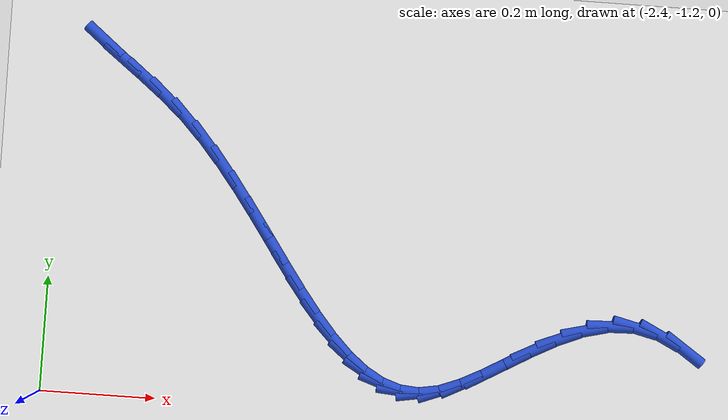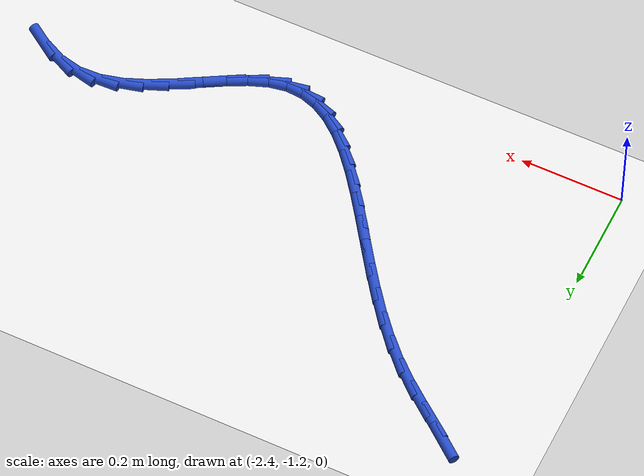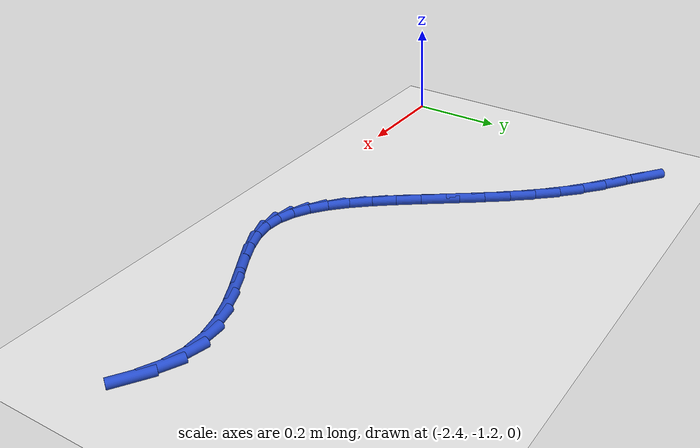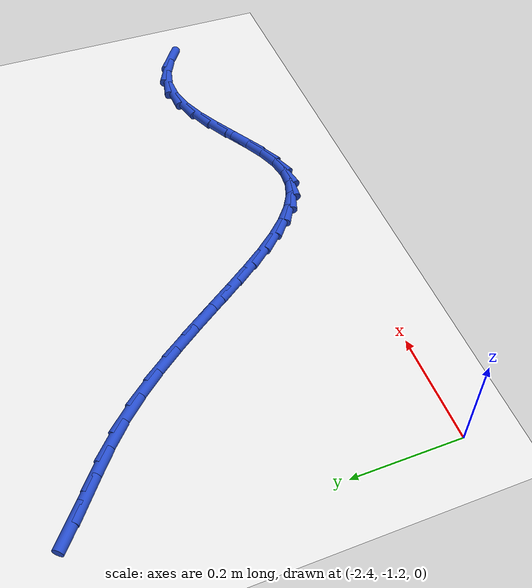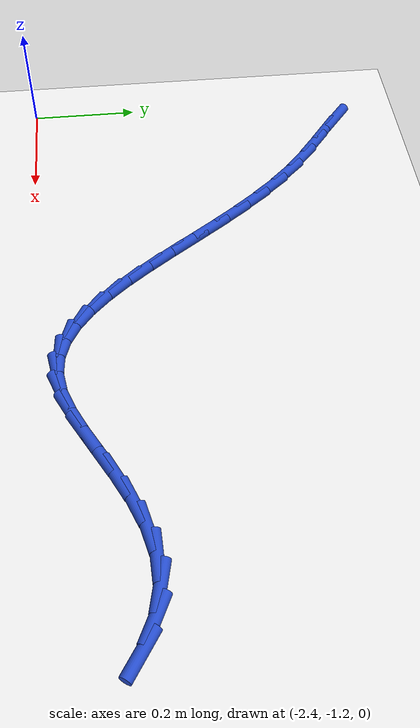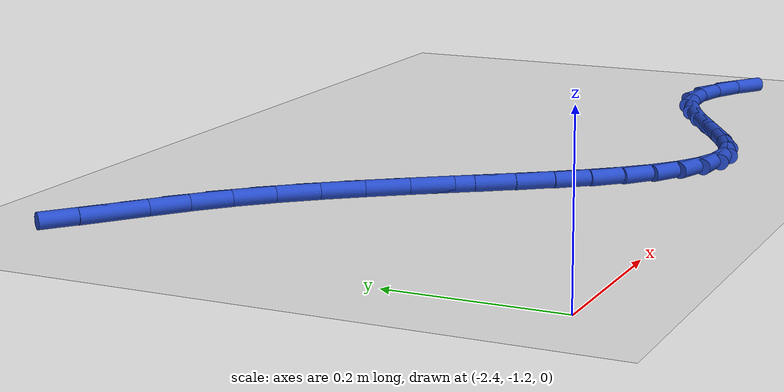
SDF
<sdf version="1.6">
 <world name="default">
  <model name="ground_plane">
   <static>1</static>
   <link name="link">
    <collision name="collision">
     <geometry><plane><normal>0 0 1</normal><size>100 100</size></plane></geometry>
     <surface><friction><ode><mu>100</mu><mu2>50</mu2></ode></friction></surface>
    </collision>
    <visual name="visual">
     <cast_shadows>0</cast_shadows>
     <geometry><plane><normal>0 0 1</normal><size>100 100</size></plane></geometry>
     <material>
      <script><uri>file://media/materials/scripts/gazebo.material</uri><name>Gazebo/WhiteGlow</name></script>
     </material>
    </visual>
   </link>
  </model>
  <model name="line">
   <link name="link_106">
    <pose>-2.328733847544443 -0.5861685321265618 0.01 0 1.57 -0.6800218580634966</pose>
    <collision name="collision">
     <geometry><cylinder><radius>0.01</radius><length>0.08</length></cylinder></geometry>
    </collision>
    <visual name="visual">
     <material>
      <script><name>Gazebo/Blue</name><uri>file://media/materials/scripts/gazebo.material</uri></script>
     </material>
     <geometry><cylinder><radius>0.01</radius><length>0.08</length></cylinder></geometry>
    </visual>
   </link>
   <link name="link_107">
    <pose>-2.293475130888537 -0.6146821691110937 0.01 0 1.57 -0.6567300156641042</pose>
    <collision name="collision">
     <geometry><cylinder><radius>0.01</radius><length>0.08</length></cylinder></geometry>
    </collision>
    <visual name="visual">
     <material>
      <script><name>Gazebo/Blue</name><uri>file://media/materials/scripts/gazebo.material</uri></script>
     </material>
     <geometry><cylinder><radius>0.01</radius><length>0.08</length></cylinder></geometry>
    </visual>
   </link>
   <link name="link_108">
    <pose>-2.2551727514107003 -0.6442086512934033 0.01 0 1.57 -0.6775860221230963</pose>
    <collision name="collision">
     <geometry><cylinder><radius>0.01</radius><length>0.08</length></cylinder></geometry>
    </collision>
    <visual name="visual">
     <material>
      <script><name>Gazebo/Blue</name><uri>file://media/materials/scripts/gazebo.material</uri></script>
     </material>
     <geometry><cylinder><radius>0.01</radius><length>0.08</length></cylinder></geometry>
    </visual>
   </link>
   <link name="link_109">
    <pose>-2.2158938314502685 -0.675815478582239 0.01 0 1.57 -0.7377689642376942</pose>
    <collision name="collision">
     <geometry><cylinder><radius>0.01</radius><length>0.08</length></cylinder></geometry>
    </collision>
    <visual name="visual">
     <material>
      <script><name>Gazebo/Blue</name><uri>file://media/materials/scripts/gazebo.material</uri></script>
     </material>
     <geometry><cylinder><radius>0.01</radius><length>0.08</length></cylinder></geometry>
    </visual>
   </link>
   <link name="link_110">
    <pose>-2.1776817490603566 -0.7105505182967421 0.01 0 1.57 -0.8129525164603123</pose>
    <collision name="collision">
     <geometry><cylinder><radius>0.01</radius><length>0.08</length></cylinder></geometry>
    </collision>
    <visual name="visual">
     <material>
      <script><name>Gazebo/Blue</name><uri>file://media/materials/scripts/gazebo.material</uri></script>
     </material>
     <geometry><cylinder><radius>0.01</radius><length>0.08</length></cylinder></geometry>
    </visual>
   </link>
   <link name="link_111">
    <pose>-2.1416138691135163 -0.7486629049513837 0.01 0 1.57 -0.8727823648808433</pose>
    <collision name="collision">
     <geometry><cylinder><radius>0.01</radius><length>0.08</length></cylinder></geometry>
    </collision>
    <visual name="visual">
     <material>
      <script><name>Gazebo/Blue</name><uri>file://media/materials/scripts/gazebo.material</uri></script>
     </material>
     <geometry><cylinder><radius>0.01</radius><length>0.08</length></cylinder></geometry>
    </visual>
   </link>
   <link name="link_112">
    <pose>-2.1074872401971363 -0.7893431636773556 0.01 0 1.57 -0.9167716983972972</pose>
    <collision name="collision">
     <geometry><cylinder><radius>0.01</radius><length>0.08</length></cylinder></geometry>
    </collision>
    <visual name="visual">
     <material>
      <script><name>Gazebo/Blue</name><uri>file://media/materials/scripts/gazebo.material</uri></script>
     </material>
     <geometry><cylinder><radius>0.01</radius><length>0.08</length></cylinder></geometry>
    </visual>
   </link>
   <link name="link_113">
    <pose>-2.075010738285354 -0.8317089154673803 0.01 0 1.57 -0.9462255595907776</pose>
    <collision name="collision">
     <geometry><cylinder><radius>0.01</radius><length>0.08</length></cylinder></geometry>
    </collision>
    <visual name="visual">
     <material>
      <script><name>Gazebo/Blue</name><uri>file://media/materials/scripts/gazebo.material</uri></script>
     </material>
     <geometry><cylinder><radius>0.01</radius><length>0.08</length></cylinder></geometry>
    </visual>
   </link>
   <link name="link_114">
    <pose>-2.043893239352305 -0.8748777813141814 0.01 0 1.57 -0.9618341316542379</pose>
    <collision name="collision">
     <geometry><cylinder><radius>0.01</radius><length>0.08</length></cylinder></geometry>
    </collision>
    <visual name="visual">
     <material>
      <script><name>Gazebo/Blue</name><uri>file://media/materials/scripts/gazebo.material</uri></script>
     </material>
     <geometry><cylinder><radius>0.01</radius><length>0.08</length></cylinder></geometry>
    </visual>
   </link>
   <link name="link_115">
    <pose>-2.013843619372125 -0.9179673822104812 0.01 0 1.57 -0.9635310383753428</pose>
    <collision name="collision">
     <geometry><cylinder><radius>0.01</radius><length>0.08</length></cylinder></geometry>
    </collision>
    <visual name="visual">
     <material>
      <script><name>Gazebo/Blue</name><uri>file://media/materials/scripts/gazebo.material</uri></script>
     </material>
     <geometry><cylinder><radius>0.01</radius><length>0.08</length></cylinder></geometry>
    </visual>
   </link>
   <link name="link_116">
    <pose>-1.984570754318952 -0.9600953391490015 0.01 0 1.57 -0.9503332598498525</pose>
    <collision name="collision">
     <geometry><cylinder><radius>0.01</radius><length>0.08</length></cylinder></geometry>
    </collision>
    <visual name="visual">
     <material>
      <script><name>Gazebo/Blue</name><uri>file://media/materials/scripts/gazebo.material</uri></script>
     </material>
     <geometry><cylinder><radius>0.01</radius><length>0.08</length></cylinder></geometry>
    </visual>
   </link>
   <link name="link_117">
    <pose>-1.9557835201669214 -1.0003792731224654 0.01 0 1.57 -0.9200993536205835</pose>
    <collision name="collision">
     <geometry><cylinder><radius>0.01</radius><length>0.08</length></cylinder></geometry>
    </collision>
    <visual name="visual">
     <material>
      <script><name>Gazebo/Blue</name><uri>file://media/materials/scripts/gazebo.material</uri></script>
     </material>
     <geometry><cylinder><radius>0.01</radius><length>0.08</length></cylinder></geometry>
    </visual>
   </link>
   <link name="link_118">
    <pose>-1.9271907928901697 -1.037936805123596 0.01 0 1.57 -0.8691666554743949</pose>
    <collision name="collision">
     <geometry><cylinder><radius>0.01</radius><length>0.08</length></cylinder></geometry>
    </collision>
    <visual name="visual">
     <material>
      <script><name>Gazebo/Blue</name><uri>file://media/materials/scripts/gazebo.material</uri></script>
     </material>
     <geometry><cylinder><radius>0.01</radius><length>0.08</length></cylinder></geometry>
    </visual>
   </link>
   <link name="link_119">
    <pose>-1.8985014484628335 -1.0718855561451157 0.01 0 1.57 -0.7918985849117213</pose>
    <collision name="collision">
     <geometry><cylinder><radius>0.01</radius><length>0.08</length></cylinder></geometry>
    </collision>
    <visual name="visual">
     <material>
      <script><name>Gazebo/Blue</name><uri>file://media/materials/scripts/gazebo.material</uri></script>
     </material>
     <geometry><cylinder><radius>0.01</radius><length>0.08</length></cylinder></geometry>
    </visual>
   </link>
   <link name="link_120">
    <pose>-1.869424362859048 -1.1013431471797477 0.01 0 1.57 -0.6804380084502983</pose>
    <collision name="collision">
     <geometry><cylinder><radius>0.01</radius><length>0.08</length></cylinder></geometry>
    </collision>
    <visual name="visual">
     <material>
      <script><name>Gazebo/Blue</name><uri>file://media/materials/scripts/gazebo.material</uri></script>
     </material>
     <geometry><cylinder><radius>0.01</radius><length>0.08</length></cylinder></geometry>
    </visual>
   </link>
   <link name="link_121">
    <pose>-1.8396684120529507 -1.1254271992202134 0.01 0 1.57 -0.5257564126179384</pose>
    <collision name="collision">
     <geometry><cylinder><radius>0.01</radius><length>0.08</length></cylinder></geometry>
    </collision>
    <visual name="visual">
     <material>
      <script><name>Gazebo/Blue</name><uri>file://media/materials/scripts/gazebo.material</uri></script>
     </material>
     <geometry><cylinder><radius>0.01</radius><length>0.08</length></cylinder></geometry>
    </visual>
   </link>
   <link name="link_122">
    <pose>-1.8089424720186784 -1.1432553332592368 0.01 0 1.57 -0.32252370972164063</pose>
    <collision name="collision">
     <geometry><cylinder><radius>0.01</radius><length>0.08</length></cylinder></geometry>
    </collision>
    <visual name="visual">
     <material>
      <script><name>Gazebo/Blue</name><uri>file://media/materials/scripts/gazebo.material</uri></script>
     </material>
     <geometry><cylinder><radius>0.01</radius><length>0.08</length></cylinder></geometry>
    </visual>
   </link>
   <link name="link_123">
    <pose>-1.7769554187303662 -1.1539451702895396 0.01 0 1.57 -0.0794157320610465</pose>
    <collision name="collision">
     <geometry><cylinder><radius>0.01</radius><length>0.08</length></cylinder></geometry>
    </collision>
    <visual name="visual">
     <material>
      <script><name>Gazebo/Blue</name><uri>file://media/materials/scripts/gazebo.material</uri></script>
     </material>
     <geometry><cylinder><radius>0.01</radius><length>0.08</length></cylinder></geometry>
    </visual>
   </link>
   <link name="link_124">
    <pose>-1.7434161281621514 -1.156614331303845 0.01 0 1.57 0.17296801445837104</pose>
    <collision name="collision">
     <geometry><cylinder><radius>0.01</radius><length>0.08</length></cylinder></geometry>
    </collision>
    <visual name="visual">
     <material>
      <script><name>Gazebo/Blue</name><uri>file://media/materials/scripts/gazebo.material</uri></script>
     </material>
     <geometry><cylinder><radius>0.01</radius><length>0.08</length></cylinder></geometry>
    </visual>
   </link>
   <link name="link_125">
    <pose>-1.7080418547302012 -1.1504339554899603 0.01 0 1.57 0.3671270744012322</pose>
    <collision name="collision">
     <geometry><cylinder><radius>0.01</radius><length>0.08</length></cylinder></geometry>
    </collision>
    <visual name="visual">
     <material>
      <script><name>Gazebo/Blue</name><uri>file://media/materials/scripts/gazebo.material</uri></script>
     </material>
     <geometry><cylinder><radius>0.01</radius><length>0.08</length></cylinder></geometry>
    </visual>
   </link>
   <link name="link_126">
    <pose>-1.6707898618896353 -1.1361082654561778 0.01 0 1.57 0.47576529651052535</pose>
    <collision name="collision">
     <geometry><cylinder><radius>0.01</radius><length>0.08</length></cylinder></geometry>
    </collision>
    <visual name="visual">
     <material>
      <script><name>Gazebo/Blue</name><uri>file://media/materials/scripts/gazebo.material</uri></script>
     </material>
     <geometry><cylinder><radius>0.01</radius><length>0.08</length></cylinder></geometry>
    </visual>
   </link>
   <link name="link_127">
    <pose>-1.6318870763515478 -1.1160639867159097 0.01 0 1.57 0.5230451362359869</pose>
    <collision name="collision">
     <geometry><cylinder><radius>0.01</radius><length>0.08</length></cylinder></geometry>
    </collision>
    <visual name="visual">
     <material>
      <script><name>Gazebo/Blue</name><uri>file://media/materials/scripts/gazebo.material</uri></script>
     </material>
     <geometry><cylinder><radius>0.01</radius><length>0.08</length></cylinder></geometry>
    </visual>
   </link>
   <link name="link_128">
    <pose>-1.5915747593562222 -1.0928194081217566 0.01 0 1.57 0.5231965917967669</pose>
    <collision name="collision">
     <geometry><cylinder><radius>0.01</radius><length>0.08</length></cylinder></geometry>
    </collision>
    <visual name="visual">
     <material>
      <script><name>Gazebo/Blue</name><uri>file://media/materials/scripts/gazebo.material</uri></script>
     </material>
     <geometry><cylinder><radius>0.01</radius><length>0.08</length></cylinder></geometry>
    </visual>
   </link>
   <link name="link_129">
    <pose>-1.5500941721439412 -1.0688928185263182 0.01 0 1.57 0.48023108406587434</pose>
    <collision name="collision">
     <geometry><cylinder><radius>0.01</radius><length>0.08</length></cylinder></geometry>
    </collision>
    <visual name="visual">
     <material>
      <script><name>Gazebo/Blue</name><uri>file://media/materials/scripts/gazebo.material</uri></script>
     </material>
     <geometry><cylinder><radius>0.01</radius><length>0.08</length></cylinder></geometry>
    </visual>
   </link>
   <link name="link_130">
    <pose>-1.5076865759549882 -1.0468025067821962 0.01 0 1.57 0.39043693107043514</pose>
    <collision name="collision">
     <geometry><cylinder><radius>0.01</radius><length>0.08</length></cylinder></geometry>
    </collision>
    <visual name="visual">
     <material>
      <script><name>Gazebo/Blue</name><uri>file://media/materials/scripts/gazebo.material</uri></script>
     </material>
     <geometry><cylinder><radius>0.01</radius><length>0.08</length></cylinder></geometry>
    </visual>
   </link>
   <link name="link_131">
    <pose>-1.4645932320296466 -1.0290667617419902 0.01 0 1.57 0.244512361214741</pose>
    <collision name="collision">
     <geometry><cylinder><radius>0.01</radius><length>0.08</length></cylinder></geometry>
    </collision>
    <visual name="visual">
     <material>
      <script><name>Gazebo/Blue</name><uri>file://media/materials/scripts/gazebo.material</uri></script>
     </material>
     <geometry><cylinder><radius>0.01</radius><length>0.08</length></cylinder></geometry>
    </visual>
   </link>
   <link name="link_132">
    <pose>-1.4210554016082009 -1.0182038722583016 0.01 0 1.57 0.03363407761465515</pose>
    <collision name="collision">
     <geometry><cylinder><radius>0.01</radius><length>0.08</length></cylinder></geometry>
    </collision>
    <visual name="visual">
     <material>
      <script><name>Gazebo/Blue</name><uri>file://media/materials/scripts/gazebo.material</uri></script>
     </material>
     <geometry><cylinder><radius>0.01</radius><length>0.08</length></cylinder></geometry>
    </visual>
   </link>
   <link name="link_133">
    <pose>-1.3773143459309343 -1.0167321271837308 0.01 0 1.57 -0.23161963952521708</pose>
    <collision name="collision">
     <geometry><cylinder><radius>0.01</radius><length>0.08</length></cylinder></geometry>
    </collision>
    <visual name="visual">
     <material>
      <script><name>Gazebo/Blue</name><uri>file://media/materials/scripts/gazebo.material</uri></script>
     </material>
     <geometry><cylinder><radius>0.01</radius><length>0.08</length></cylinder></geometry>
    </visual>
   </link>
   <link name="link_134">
    <pose>-1.3336124130885758 -1.0270393349039322 0.01 0 1.57 -0.4596919807189096</pose>
    <collision name="collision">
     <geometry><cylinder><radius>0.01</radius><length>0.08</length></cylinder></geometry>
    </collision>
    <visual name="visual">
     <material>
      <script><name>Gazebo/Blue</name><uri>file://media/materials/scripts/gazebo.material</uri></script>
     </material>
     <geometry><cylinder><radius>0.01</radius><length>0.08</length></cylinder></geometry>
    </visual>
   </link>
   <link name="link_135">
    <pose>-1.2902168595203793 -1.0485229632681223 0.01 0 1.57 -0.5967149795720936</pose>
    <collision name="collision">
     <geometry><cylinder><radius>0.01</radius><length>0.08</length></cylinder></geometry>
    </collision>
    <visual name="visual">
     <material>
      <script><name>Gazebo/Blue</name><uri>file://media/materials/scripts/gazebo.material</uri></script>
     </material>
     <geometry><cylinder><radius>0.01</radius><length>0.08</length></cylinder></geometry>
    </visual>
   </link>
  </model>
 </world>
</sdf>
